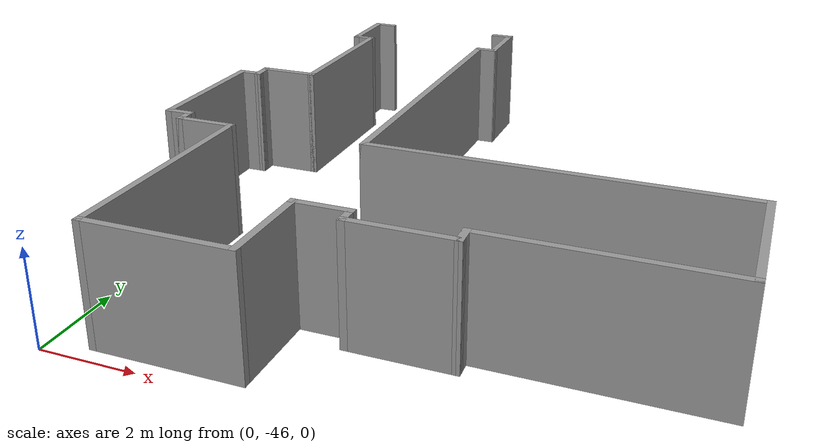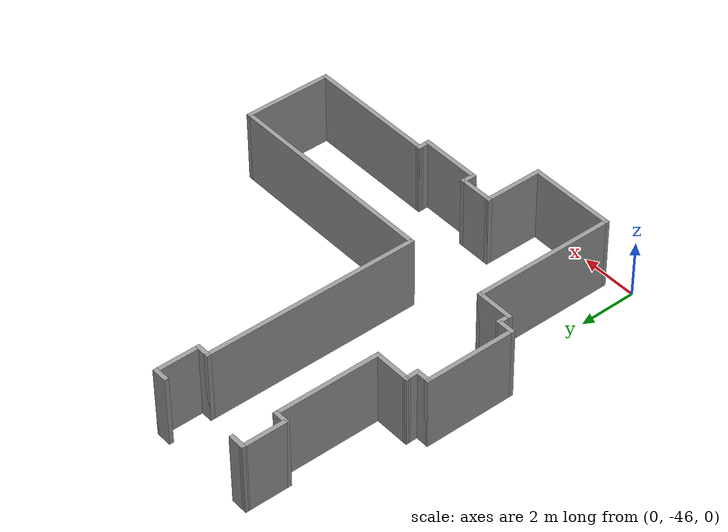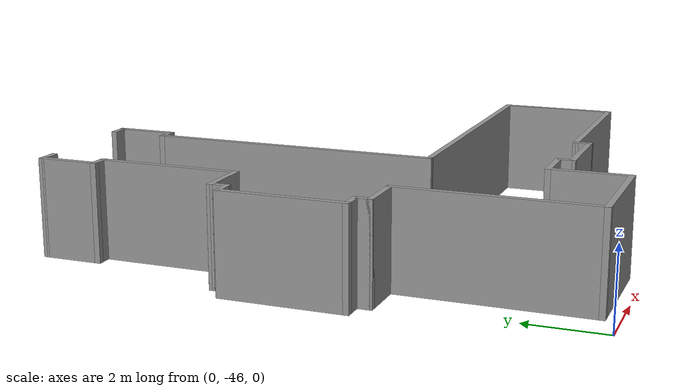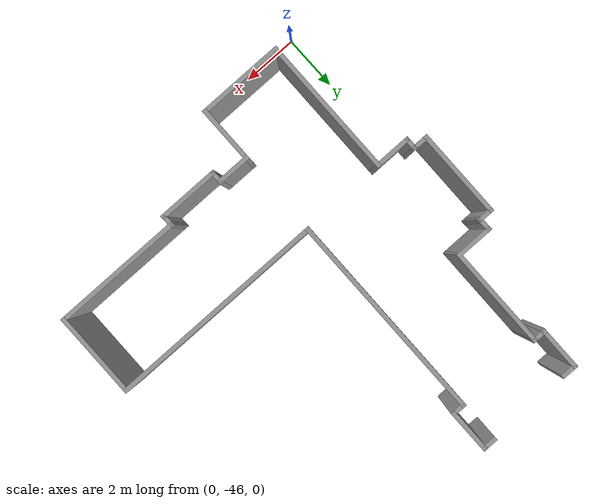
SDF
<sdf version="1.6">
 <model name="volen.world">
  <link name="Wall_180">
   <pose>4.07723 -31.9006 0 0 -0 0</pose>
   <visual name="Wall_180_Visual">
    <pose>0 0 1.25 0 -0 0</pose>
    <geometry><box><size>0.55 0.15 2.5</size></box></geometry>
    <material>
     <script><uri>file://media/materials/scripts/gazebo.material</uri><name>Gazebo/Grey</name></script>
     <ambient>1 1 1 1</ambient>
     <diffuse>0.7 0.7 0.7 1</diffuse>
     <specular>0.01 0.01 0.01 1</specular>
     <emissive>0 0 0 1</emissive>
    </material>
   </visual>
   <collision name="Wall_180_Collision">
    <pose>0 0 1.25 0 -0 0</pose>
    <geometry><box><size>0.55 0.15 2.5</size></box></geometry>
    <surface>
     <friction>
      <ode><mu>1</mu><mu2>1</mu2><fdir1>0 0 0</fdir1><slip1>0</slip1><slip2>0</slip2></ode>
      <torsional>
       <coefficient>1</coefficient>
       <patch_radius>0</patch_radius>
       <surface_radius>0</surface_radius>
       <use_patch_radius>1</use_patch_radius>
       <ode><slip>0</slip></ode>
      </torsional>
     </friction>
     <bounce><restitution_coefficient>0</restitution_coefficient><threshold>1e+06</threshold></bounce>
     <contact>
      <collide_without_contact>0</collide_without_contact>
      <collide_without_contact_bitmask>1</collide_without_contact_bitmask>
      <collide_bitmask>1</collide_bitmask>
      <ode>
       <soft_cfm>0</soft_cfm>
       <soft_erp>0.2</soft_erp>
       <kp>1e+13</kp>
       <kd>1</kd>
       <max_vel>0.01</max_vel>
       <min_depth>0</min_depth>
      </ode>
      <bullet>
       <split_impulse>1</split_impulse>
       <split_impulse_penetration_threshold>-0.01</split_impulse_penetration_threshold>
       <soft_cfm>0</soft_cfm>
       <soft_erp>0.2</soft_erp>
       <kp>1e+13</kp>
       <kd>1</kd>
      </bullet>
     </contact>
    </surface>
   </collision>
  </link>
  <link name="Wall_182">
   <pose>4.27723 -32.6256 0 0 0 -1.5708</pose>
   <visual name="Wall_182_Visual">
    <pose>0 0 1.25 0 -0 0</pose>
    <geometry><box><size>1.6 0.15 2.5</size></box></geometry>
    <material>
     <script><uri>file://media/materials/scripts/gazebo.material</uri><name>Gazebo/Grey</name></script>
     <ambient>1 1 1 1</ambient>
     <diffuse>0.7 0.7 0.7 1</diffuse>
     <specular>0.01 0.01 0.01 1</specular>
     <emissive>0 0 0 1</emissive>
    </material>
   </visual>
   <collision name="Wall_182_Collision">
    <pose>0 0 1.25 0 -0 0</pose>
    <geometry><box><size>1.6 0.15 2.5</size></box></geometry>
    <surface>
     <friction>
      <ode><mu>1</mu><mu2>1</mu2><fdir1>0 0 0</fdir1><slip1>0</slip1><slip2>0</slip2></ode>
      <torsional>
       <coefficient>1</coefficient>
       <patch_radius>0</patch_radius>
       <surface_radius>0</surface_radius>
       <use_patch_radius>1</use_patch_radius>
       <ode><slip>0</slip></ode>
      </torsional>
     </friction>
     <bounce><restitution_coefficient>0</restitution_coefficient><threshold>1e+06</threshold></bounce>
     <contact>
      <collide_without_contact>0</collide_without_contact>
      <collide_without_contact_bitmask>1</collide_without_contact_bitmask>
      <collide_bitmask>1</collide_bitmask>
      <ode>
       <soft_cfm>0</soft_cfm>
       <soft_erp>0.2</soft_erp>
       <kp>1e+13</kp>
       <kd>1</kd>
       <max_vel>0.01</max_vel>
       <min_depth>0</min_depth>
      </ode>
      <bullet>
       <split_impulse>1</split_impulse>
       <split_impulse_penetration_threshold>-0.01</split_impulse_penetration_threshold>
       <soft_cfm>0</soft_cfm>
       <soft_erp>0.2</soft_erp>
       <kp>1e+13</kp>
       <kd>1</kd>
      </bullet>
     </contact>
    </surface>
   </collision>
  </link>
  <link name="Wall_184">
   <pose>4.07723 -33.3506 0 0 -0 3.14159</pose>
   <visual name="Wall_184_Visual">
    <pose>0 0 1.25 0 -0 0</pose>
    <geometry><box><size>0.55 0.15 2.5</size></box></geometry>
    <material>
     <script><uri>file://media/materials/scripts/gazebo.material</uri><name>Gazebo/Grey</name></script>
     <ambient>1 1 1 1</ambient>
     <diffuse>0.7 0.7 0.7 1</diffuse>
     <specular>0.01 0.01 0.01 1</specular>
     <emissive>0 0 0 1</emissive>
    </material>
   </visual>
   <collision name="Wall_184_Collision">
    <pose>0 0 1.25 0 -0 0</pose>
    <geometry><box><size>0.55 0.15 2.5</size></box></geometry>
    <surface>
     <friction>
      <ode><mu>1</mu><mu2>1</mu2><fdir1>0 0 0</fdir1><slip1>0</slip1><slip2>0</slip2></ode>
      <torsional>
       <coefficient>1</coefficient>
       <patch_radius>0</patch_radius>
       <surface_radius>0</surface_radius>
       <use_patch_radius>1</use_patch_radius>
       <ode><slip>0</slip></ode>
      </torsional>
     </friction>
     <bounce><restitution_coefficient>0</restitution_coefficient><threshold>1e+06</threshold></bounce>
     <contact>
      <collide_without_contact>0</collide_without_contact>
      <collide_without_contact_bitmask>1</collide_without_contact_bitmask>
      <collide_bitmask>1</collide_bitmask>
      <ode>
       <soft_cfm>0</soft_cfm>
       <soft_erp>0.2</soft_erp>
       <kp>1e+13</kp>
       <kd>1</kd>
       <max_vel>0.01</max_vel>
       <min_depth>0</min_depth>
      </ode>
      <bullet>
       <split_impulse>1</split_impulse>
       <split_impulse_penetration_threshold>-0.01</split_impulse_penetration_threshold>
       <soft_cfm>0</soft_cfm>
       <soft_erp>0.2</soft_erp>
       <kp>1e+13</kp>
       <kd>1</kd>
      </bullet>
     </contact>
    </surface>
   </collision>
  </link>
  <link name="Wall_187">
   <pose>3.87723 -37.0256 0 0 0 -1.5708</pose>
   <visual name="Wall_187_Visual">
    <pose>0 0 1.25 0 -0 0</pose>
    <geometry><box><size>7.5 0.15 2.5</size></box></geometry>
    <material>
     <script><uri>file://media/materials/scripts/gazebo.material</uri><name>Gazebo/Grey</name></script>
     <ambient>1 1 1 1</ambient>
     <diffuse>0.7 0.7 0.7 1</diffuse>
     <specular>0.01 0.01 0.01 1</specular>
     <emissive>0 0 0 1</emissive>
    </material>
   </visual>
   <collision name="Wall_187_Collision">
    <pose>0 0 1.25 0 -0 0</pose>
    <geometry><box><size>7.5 0.15 2.5</size></box></geometry>
    <surface>
     <friction>
      <ode><mu>1</mu><mu2>1</mu2><fdir1>0 0 0</fdir1><slip1>0</slip1><slip2>0</slip2></ode>
      <torsional>
       <coefficient>1</coefficient>
       <patch_radius>0</patch_radius>
       <surface_radius>0</surface_radius>
       <use_patch_radius>1</use_patch_radius>
       <ode><slip>0</slip></ode>
      </torsional>
     </friction>
     <bounce><restitution_coefficient>0</restitution_coefficient><threshold>1e+06</threshold></bounce>
     <contact>
      <collide_without_contact>0</collide_without_contact>
      <collide_without_contact_bitmask>1</collide_without_contact_bitmask>
      <collide_bitmask>1</collide_bitmask>
      <ode>
       <soft_cfm>0</soft_cfm>
       <soft_erp>0.2</soft_erp>
       <kp>1e+13</kp>
       <kd>1</kd>
       <max_vel>0.01</max_vel>
       <min_depth>0</min_depth>
      </ode>
      <bullet>
       <split_impulse>1</split_impulse>
       <split_impulse_penetration_threshold>-0.01</split_impulse_penetration_threshold>
       <soft_cfm>0</soft_cfm>
       <soft_erp>0.2</soft_erp>
       <kp>1e+13</kp>
       <kd>1</kd>
      </bullet>
     </contact>
    </surface>
   </collision>
  </link>
  <link name="Wall_188">
   <pose>7.67723 -40.7006 0 0 -0 0</pose>
   <visual name="Wall_188_Visual">
    <pose>0 0 1.25 0 -0 0</pose>
    <geometry><box><size>7.75 0.15 2.5</size></box></geometry>
    <material>
     <script><uri>file://media/materials/scripts/gazebo.material</uri><name>Gazebo/Grey</name></script>
     <ambient>1 1 1 1</ambient>
     <diffuse>0.7 0.7 0.7 1</diffuse>
     <specular>0.01 0.01 0.01 1</specular>
     <emissive>0 0 0 1</emissive>
    </material>
   </visual>
   <collision name="Wall_188_Collision">
    <pose>0 0 1.25 0 -0 0</pose>
    <geometry><box><size>7.75 0.15 2.5</size></box></geometry>
    <surface>
     <friction>
      <ode><mu>1</mu><mu2>1</mu2><fdir1>0 0 0</fdir1><slip1>0</slip1><slip2>0</slip2></ode>
      <torsional>
       <coefficient>1</coefficient>
       <patch_radius>0</patch_radius>
       <surface_radius>0</surface_radius>
       <use_patch_radius>1</use_patch_radius>
       <ode><slip>0</slip></ode>
      </torsional>
     </friction>
     <bounce><restitution_coefficient>0</restitution_coefficient><threshold>1e+06</threshold></bounce>
     <contact>
      <collide_without_contact>0</collide_without_contact>
      <collide_without_contact_bitmask>1</collide_without_contact_bitmask>
      <collide_bitmask>1</collide_bitmask>
      <ode>
       <soft_cfm>0</soft_cfm>
       <soft_erp>0.2</soft_erp>
       <kp>1e+13</kp>
       <kd>1</kd>
       <max_vel>0.01</max_vel>
       <min_depth>0</min_depth>
      </ode>
      <bullet>
       <split_impulse>1</split_impulse>
       <split_impulse_penetration_threshold>-0.01</split_impulse_penetration_threshold>
       <soft_cfm>0</soft_cfm>
       <soft_erp>0.2</soft_erp>
       <kp>1e+13</kp>
       <kd>1</kd>
      </bullet>
     </contact>
    </surface>
   </collision>
  </link>
  <link name="Wall_190">
   <pose>11.4772 -42.1756 0 0 0 -1.5708</pose>
   <visual name="Wall_190_Visual">
    <pose>0 0 1.25 0 -0 0</pose>
    <geometry><box><size>3.1 0.15 2.5</size></box></geometry>
    <material>
     <script><uri>file://media/materials/scripts/gazebo.material</uri><name>Gazebo/Grey</name></script>
     <ambient>1 1 1 1</ambient>
     <diffuse>0.7 0.7 0.7 1</diffuse>
     <specular>0.01 0.01 0.01 1</specular>
     <emissive>0 0 0 1</emissive>
    </material>
   </visual>
   <collision name="Wall_190_Collision">
    <pose>0 0 1.25 0 -0 0</pose>
    <geometry><box><size>3.1 0.15 2.5</size></box></geometry>
    <surface>
     <friction>
      <ode><mu>1</mu><mu2>1</mu2><fdir1>0 0 0</fdir1><slip1>0</slip1><slip2>0</slip2></ode>
      <torsional>
       <coefficient>1</coefficient>
       <patch_radius>0</patch_radius>
       <surface_radius>0</surface_radius>
       <use_patch_radius>1</use_patch_radius>
       <ode><slip>0</slip></ode>
      </torsional>
     </friction>
     <bounce><restitution_coefficient>0</restitution_coefficient><threshold>1e+06</threshold></bounce>
     <contact>
      <collide_without_contact>0</collide_without_contact>
      <collide_without_contact_bitmask>1</collide_without_contact_bitmask>
      <collide_bitmask>1</collide_bitmask>
      <ode>
       <soft_cfm>0</soft_cfm>
       <soft_erp>0.2</soft_erp>
       <kp>1e+13</kp>
       <kd>1</kd>
       <max_vel>0.01</max_vel>
       <min_depth>0</min_depth>
      </ode>
      <bullet>
       <split_impulse>1</split_impulse>
       <split_impulse_penetration_threshold>-0.01</split_impulse_penetration_threshold>
       <soft_cfm>0</soft_cfm>
       <soft_erp>0.2</soft_erp>
       <kp>1e+13</kp>
       <kd>1</kd>
      </bullet>
     </contact>
    </surface>
   </collision>
  </link>
  <link name="Wall_192">
   <pose>9.22723 -43.6506 0 0 -0 3.14159</pose>
   <visual name="Wall_192_Visual">
    <pose>0 0 1.25 0 -0 0</pose>
    <geometry><box><size>4.65 0.15 2.5</size></box></geometry>
    <material>
     <script><uri>file://media/materials/scripts/gazebo.material</uri><name>Gazebo/Grey</name></script>
     <ambient>1 1 1 1</ambient>
     <diffuse>0.7 0.7 0.7 1</diffuse>
     <specular>0.01 0.01 0.01 1</specular>
     <emissive>0 0 0 1</emissive>
    </material>
   </visual>
   <collision name="Wall_192_Collision">
    <pose>0 0 1.25 0 -0 0</pose>
    <geometry><box><size>4.65 0.15 2.5</size></box></geometry>
    <surface>
     <friction>
      <ode><mu>1</mu><mu2>1</mu2><fdir1>0 0 0</fdir1><slip1>0</slip1><slip2>0</slip2></ode>
      <torsional>
       <coefficient>1</coefficient>
       <patch_radius>0</patch_radius>
       <surface_radius>0</surface_radius>
       <use_patch_radius>1</use_patch_radius>
       <ode><slip>0</slip></ode>
      </torsional>
     </friction>
     <bounce><restitution_coefficient>0</restitution_coefficient><threshold>1e+06</threshold></bounce>
     <contact>
      <collide_without_contact>0</collide_without_contact>
      <collide_without_contact_bitmask>1</collide_without_contact_bitmask>
      <collide_bitmask>1</collide_bitmask>
      <ode>
       <soft_cfm>0</soft_cfm>
       <soft_erp>0.2</soft_erp>
       <kp>1e+13</kp>
       <kd>1</kd>
       <max_vel>0.01</max_vel>
       <min_depth>0</min_depth>
      </ode>
      <bullet>
       <split_impulse>1</split_impulse>
       <split_impulse_penetration_threshold>-0.01</split_impulse_penetration_threshold>
       <soft_cfm>0</soft_cfm>
       <soft_erp>0.2</soft_erp>
       <kp>1e+13</kp>
       <kd>1</kd>
      </bullet>
     </contact>
    </surface>
   </collision>
  </link>
  <link name="Wall_194">
   <pose>6.98173 -43.8256 0 0 0 -1.54509</pose>
   <visual name="Wall_194_Visual">
    <pose>0 0 1.25 0 -0 0</pose>
    <geometry><box><size>0.5 0.15 2.5</size></box></geometry>
    <material>
     <script><uri>file://media/materials/scripts/gazebo.material</uri><name>Gazebo/Grey</name></script>
     <ambient>1 1 1 1</ambient>
     <diffuse>0.7 0.7 0.7 1</diffuse>
     <specular>0.01 0.01 0.01 1</specular>
     <emissive>0 0 0 1</emissive>
    </material>
   </visual>
   <collision name="Wall_194_Collision">
    <pose>0 0 1.25 0 -0 0</pose>
    <geometry><box><size>0.5 0.15 2.5</size></box></geometry>
    <surface>
     <friction>
      <ode><mu>1</mu><mu2>1</mu2><fdir1>0 0 0</fdir1><slip1>0</slip1><slip2>0</slip2></ode>
      <torsional>
       <coefficient>1</coefficient>
       <patch_radius>0</patch_radius>
       <surface_radius>0</surface_radius>
       <use_patch_radius>1</use_patch_radius>
       <ode><slip>0</slip></ode>
      </torsional>
     </friction>
     <bounce><restitution_coefficient>0</restitution_coefficient><threshold>1e+06</threshold></bounce>
     <contact>
      <collide_without_contact>0</collide_without_contact>
      <collide_without_contact_bitmask>1</collide_without_contact_bitmask>
      <collide_bitmask>1</collide_bitmask>
      <ode>
       <soft_cfm>0</soft_cfm>
       <soft_erp>0.2</soft_erp>
       <kp>1e+13</kp>
       <kd>1</kd>
       <max_vel>0.01</max_vel>
       <min_depth>0</min_depth>
      </ode>
      <bullet>
       <split_impulse>1</split_impulse>
       <split_impulse_penetration_threshold>-0.01</split_impulse_penetration_threshold>
       <soft_cfm>0</soft_cfm>
       <soft_erp>0.2</soft_erp>
       <kp>1e+13</kp>
       <kd>1</kd>
      </bullet>
     </contact>
    </surface>
   </collision>
  </link>
  <link name="Wall_195">
   <pose>5.96123 -44.0006 0 0 -0 3.14159</pose>
   <visual name="Wall_195_Visual">
    <pose>0 0 1.25 0 -0 0</pose>
    <geometry><box><size>2.2 0.15 2.5</size></box></geometry>
    <material>
     <script><uri>file://media/materials/scripts/gazebo.material</uri><name>Gazebo/Grey</name></script>
     <ambient>1 1 1 1</ambient>
     <diffuse>0.7 0.7 0.7 1</diffuse>
     <specular>0.01 0.01 0.01 1</specular>
     <emissive>0 0 0 1</emissive>
    </material>
   </visual>
   <collision name="Wall_195_Collision">
    <pose>0 0 1.25 0 -0 0</pose>
    <geometry><box><size>2.2 0.15 2.5</size></box></geometry>
    <surface>
     <friction>
      <ode><mu>1</mu><mu2>1</mu2><fdir1>0 0 0</fdir1><slip1>0</slip1><slip2>0</slip2></ode>
      <torsional>
       <coefficient>1</coefficient>
       <patch_radius>0</patch_radius>
       <surface_radius>0</surface_radius>
       <use_patch_radius>1</use_patch_radius>
       <ode><slip>0</slip></ode>
      </torsional>
     </friction>
     <bounce><restitution_coefficient>0</restitution_coefficient><threshold>1e+06</threshold></bounce>
     <contact>
      <collide_without_contact>0</collide_without_contact>
      <collide_without_contact_bitmask>1</collide_without_contact_bitmask>
      <collide_bitmask>1</collide_bitmask>
      <ode>
       <soft_cfm>0</soft_cfm>
       <soft_erp>0.2</soft_erp>
       <kp>1e+13</kp>
       <kd>1</kd>
       <max_vel>0.01</max_vel>
       <min_depth>0</min_depth>
      </ode>
      <bullet>
       <split_impulse>1</split_impulse>
       <split_impulse_penetration_threshold>-0.01</split_impulse_penetration_threshold>
       <soft_cfm>0</soft_cfm>
       <soft_erp>0.2</soft_erp>
       <kp>1e+13</kp>
       <kd>1</kd>
      </bullet>
     </contact>
    </surface>
   </collision>
  </link>
  <link name="Wall_197">
   <pose>4.93623 -43.8256 0 0 -0 1.5708</pose>
   <visual name="Wall_197_Visual">
    <pose>0 0 1.25 0 -0 0</pose>
    <geometry><box><size>0.5 0.15 2.5</size></box></geometry>
    <material>
     <script><uri>file://media/materials/scripts/gazebo.material</uri><name>Gazebo/Grey</name></script>
     <ambient>1 1 1 1</ambient>
     <diffuse>0.7 0.7 0.7 1</diffuse>
     <specular>0.01 0.01 0.01 1</specular>
     <emissive>0 0 0 1</emissive>
    </material>
   </visual>
   <collision name="Wall_197_Collision">
    <pose>0 0 1.25 0 -0 0</pose>
    <geometry><box><size>0.5 0.15 2.5</size></box></geometry>
    <surface>
     <friction>
      <ode><mu>1</mu><mu2>1</mu2><fdir1>0 0 0</fdir1><slip1>0</slip1><slip2>0</slip2></ode>
      <torsional>
       <coefficient>1</coefficient>
       <patch_radius>0</patch_radius>
       <surface_radius>0</surface_radius>
       <use_patch_radius>1</use_patch_radius>
       <ode><slip>0</slip></ode>
      </torsional>
     </friction>
     <bounce><restitution_coefficient>0</restitution_coefficient><threshold>1e+06</threshold></bounce>
     <contact>
      <collide_without_contact>0</collide_without_contact>
      <collide_without_contact_bitmask>1</collide_without_contact_bitmask>
      <collide_bitmask>1</collide_bitmask>
      <ode>
       <soft_cfm>0</soft_cfm>
       <soft_erp>0.2</soft_erp>
       <kp>1e+13</kp>
       <kd>1</kd>
       <max_vel>0.01</max_vel>
       <min_depth>0</min_depth>
      </ode>
      <bullet>
       <split_impulse>1</split_impulse>
       <split_impulse_penetration_threshold>-0.01</split_impulse_penetration_threshold>
       <soft_cfm>0</soft_cfm>
       <soft_erp>0.2</soft_erp>
       <kp>1e+13</kp>
       <kd>1</kd>
      </bullet>
     </contact>
    </surface>
   </collision>
  </link>
  <link name="Wall_198">
   <pose>4.38623 -43.6506 0 0 -0 3.14159</pose>
   <visual name="Wall_198_Visual">
    <pose>0 0 1.25 0 -0 0</pose>
    <geometry><box><size>1.25 0.15 2.5</size></box></geometry>
    <material>
     <script><uri>file://media/materials/scripts/gazebo.material</uri><name>Gazebo/Grey</name></script>
     <ambient>1 1 1 1</ambient>
     <diffuse>0.7 0.7 0.7 1</diffuse>
     <specular>0.01 0.01 0.01 1</specular>
     <emissive>0 0 0 1</emissive>
    </material>
   </visual>
   <collision name="Wall_198_Collision">
    <pose>0 0 1.25 0 -0 0</pose>
    <geometry><box><size>1.25 0.15 2.5</size></box></geometry>
    <surface>
     <friction>
      <ode><mu>1</mu><mu2>1</mu2><fdir1>0 0 0</fdir1><slip1>0</slip1><slip2>0</slip2></ode>
      <torsional>
       <coefficient>1</coefficient>
       <patch_radius>0</patch_radius>
       <surface_radius>0</surface_radius>
       <use_patch_radius>1</use_patch_radius>
       <ode><slip>0</slip></ode>
      </torsional>
     </friction>
     <bounce><restitution_coefficient>0</restitution_coefficient><threshold>1e+06</threshold></bounce>
     <contact>
      <collide_without_contact>0</collide_without_contact>
      <collide_without_contact_bitmask>1</collide_without_contact_bitmask>
      <collide_bitmask>1</collide_bitmask>
      <ode>
       <soft_cfm>0</soft_cfm>
       <soft_erp>0.2</soft_erp>
       <kp>1e+13</kp>
       <kd>1</kd>
       <max_vel>0.01</max_vel>
       <min_depth>0</min_depth>
      </ode>
      <bullet>
       <split_impulse>1</split_impulse>
       <split_impulse_penetration_threshold>-0.01</split_impulse_penetration_threshold>
       <soft_cfm>0</soft_cfm>
       <soft_erp>0.2</soft_erp>
       <kp>1e+13</kp>
       <kd>1</kd>
      </bullet>
     </contact>
    </surface>
   </collision>
  </link>
  <link name="Wall_199">
   <pose>3.83623 -44.6256 0 0 0 -1.5708</pose>
   <visual name="Wall_199_Visual">
    <pose>0 0 1.25 0 -0 0</pose>
    <geometry><box><size>2.1 0.15 2.5</size></box></geometry>
    <material>
     <script><uri>file://media/materials/scripts/gazebo.material</uri><name>Gazebo/Grey</name></script>
     <ambient>1 1 1 1</ambient>
     <diffuse>0.7 0.7 0.7 1</diffuse>
     <specular>0.01 0.01 0.01 1</specular>
     <emissive>0 0 0 1</emissive>
    </material>
   </visual>
   <collision name="Wall_199_Collision">
    <pose>0 0 1.25 0 -0 0</pose>
    <geometry><box><size>2.1 0.15 2.5</size></box></geometry>
    <surface>
     <friction>
      <ode><mu>1</mu><mu2>1</mu2><fdir1>0 0 0</fdir1><slip1>0</slip1><slip2>0</slip2></ode>
      <torsional>
       <coefficient>1</coefficient>
       <patch_radius>0</patch_radius>
       <surface_radius>0</surface_radius>
       <use_patch_radius>1</use_patch_radius>
       <ode><slip>0</slip></ode>
      </torsional>
     </friction>
     <bounce><restitution_coefficient>0</restitution_coefficient><threshold>1e+06</threshold></bounce>
     <contact>
      <collide_without_contact>0</collide_without_contact>
      <collide_without_contact_bitmask>1</collide_without_contact_bitmask>
      <collide_bitmask>1</collide_bitmask>
      <ode>
       <soft_cfm>0</soft_cfm>
       <soft_erp>0.2</soft_erp>
       <kp>1e+13</kp>
       <kd>1</kd>
       <max_vel>0.01</max_vel>
       <min_depth>0</min_depth>
      </ode>
      <bullet>
       <split_impulse>1</split_impulse>
       <split_impulse_penetration_threshold>-0.01</split_impulse_penetration_threshold>
       <soft_cfm>0</soft_cfm>
       <soft_erp>0.2</soft_erp>
       <kp>1e+13</kp>
       <kd>1</kd>
      </bullet>
     </contact>
    </surface>
   </collision>
  </link>
  <link name="Wall_202">
   <pose>2.36123 -45.6006 0 0 -0 3.14159</pose>
   <visual name="Wall_202_Visual">
    <pose>0 0 1.25 0 -0 0</pose>
    <geometry><box><size>3.1 0.15 2.5</size></box></geometry>
    <material>
     <script><uri>file://media/materials/scripts/gazebo.material</uri><name>Gazebo/Grey</name></script>
     <ambient>1 1 1 1</ambient>
     <diffuse>0.7 0.7 0.7 1</diffuse>
     <specular>0.01 0.01 0.01 1</specular>
     <emissive>0 0 0 1</emissive>
    </material>
   </visual>
   <collision name="Wall_202_Collision">
    <pose>0 0 1.25 0 -0 0</pose>
    <geometry><box><size>3.1 0.15 2.5</size></box></geometry>
    <surface>
     <friction>
      <ode><mu>1</mu><mu2>1</mu2><fdir1>0 0 0</fdir1><slip1>0</slip1><slip2>0</slip2></ode>
      <torsional>
       <coefficient>1</coefficient>
       <patch_radius>0</patch_radius>
       <surface_radius>0</surface_radius>
       <use_patch_radius>1</use_patch_radius>
       <ode><slip>0</slip></ode>
      </torsional>
     </friction>
     <bounce><restitution_coefficient>0</restitution_coefficient><threshold>1e+06</threshold></bounce>
     <contact>
      <collide_without_contact>0</collide_without_contact>
      <collide_without_contact_bitmask>1</collide_without_contact_bitmask>
      <collide_bitmask>1</collide_bitmask>
      <ode>
       <soft_cfm>0</soft_cfm>
       <soft_erp>0.2</soft_erp>
       <kp>1e+13</kp>
       <kd>1</kd>
       <max_vel>0.01</max_vel>
       <min_depth>0</min_depth>
      </ode>
      <bullet>
       <split_impulse>1</split_impulse>
       <split_impulse_penetration_threshold>-0.01</split_impulse_penetration_threshold>
       <soft_cfm>0</soft_cfm>
       <soft_erp>0.2</soft_erp>
       <kp>1e+13</kp>
       <kd>1</kd>
      </bullet>
     </contact>
    </surface>
   </collision>
  </link>
  <link name="Wall_204">
   <pose>0.88623 -43.1756 0 0 -0 1.5708</pose>
   <visual name="Wall_204_Visual">
    <pose>0 0 1.25 0 -0 0</pose>
    <geometry><box><size>5 0.15 2.5</size></box></geometry>
    <material>
     <script><uri>file://media/materials/scripts/gazebo.material</uri><name>Gazebo/Grey</name></script>
     <ambient>1 1 1 1</ambient>
     <diffuse>0.7 0.7 0.7 1</diffuse>
     <specular>0.01 0.01 0.01 1</specular>
     <emissive>0 0 0 1</emissive>
    </material>
   </visual>
   <collision name="Wall_204_Collision">
    <pose>0 0 1.25 0 -0 0</pose>
    <geometry><box><size>5 0.15 2.5</size></box></geometry>
    <surface>
     <friction>
      <ode><mu>1</mu><mu2>1</mu2><fdir1>0 0 0</fdir1><slip1>0</slip1><slip2>0</slip2></ode>
      <torsional>
       <coefficient>1</coefficient>
       <patch_radius>0</patch_radius>
       <surface_radius>0</surface_radius>
       <use_patch_radius>1</use_patch_radius>
       <ode><slip>0</slip></ode>
      </torsional>
     </friction>
     <bounce><restitution_coefficient>0</restitution_coefficient><threshold>1e+06</threshold></bounce>
     <contact>
      <collide_without_contact>0</collide_without_contact>
      <collide_without_contact_bitmask>1</collide_without_contact_bitmask>
      <collide_bitmask>1</collide_bitmask>
      <ode>
       <soft_cfm>0</soft_cfm>
       <soft_erp>0.2</soft_erp>
       <kp>1e+13</kp>
       <kd>1</kd>
       <max_vel>0.01</max_vel>
       <min_depth>0</min_depth>
      </ode>
      <bullet>
       <split_impulse>1</split_impulse>
       <split_impulse_penetration_threshold>-0.01</split_impulse_penetration_threshold>
       <soft_cfm>0</soft_cfm>
       <soft_erp>0.2</soft_erp>
       <kp>1e+13</kp>
       <kd>1</kd>
      </bullet>
     </contact>
    </surface>
   </collision>
  </link>
  <link name="Wall_206">
   <pose>0.28623 -40.7506 0 0 -0 3.14159</pose>
   <visual name="Wall_206_Visual">
    <pose>0 0 1.25 0 -0 0</pose>
    <geometry><box><size>1.35 0.15 2.5</size></box></geometry>
    <material>
     <script><uri>file://media/materials/scripts/gazebo.material</uri><name>Gazebo/Grey</name></script>
     <ambient>1 1 1 1</ambient>
     <diffuse>0.7 0.7 0.7 1</diffuse>
     <specular>0.01 0.01 0.01 1</specular>
     <emissive>0 0 0 1</emissive>
    </material>
   </visual>
   <collision name="Wall_206_Collision">
    <pose>0 0 1.25 0 -0 0</pose>
    <geometry><box><size>1.35 0.15 2.5</size></box></geometry>
    <surface>
     <friction>
      <ode><mu>1</mu><mu2>1</mu2><fdir1>0 0 0</fdir1><slip1>0</slip1><slip2>0</slip2></ode>
      <torsional>
       <coefficient>1</coefficient>
       <patch_radius>0</patch_radius>
       <surface_radius>0</surface_radius>
       <use_patch_radius>1</use_patch_radius>
       <ode><slip>0</slip></ode>
      </torsional>
     </friction>
     <bounce><restitution_coefficient>0</restitution_coefficient><threshold>1e+06</threshold></bounce>
     <contact>
      <collide_without_contact>0</collide_without_contact>
      <collide_without_contact_bitmask>1</collide_without_contact_bitmask>
      <collide_bitmask>1</collide_bitmask>
      <ode>
       <soft_cfm>0</soft_cfm>
       <soft_erp>0.2</soft_erp>
       <kp>1e+13</kp>
       <kd>1</kd>
       <max_vel>0.01</max_vel>
       <min_depth>0</min_depth>
      </ode>
      <bullet>
       <split_impulse>1</split_impulse>
       <split_impulse_penetration_threshold>-0.01</split_impulse_penetration_threshold>
       <soft_cfm>0</soft_cfm>
       <soft_erp>0.2</soft_erp>
       <kp>1e+13</kp>
       <kd>1</kd>
      </bullet>
     </contact>
    </surface>
   </collision>
  </link>
  <link name="Wall_208">
   <pose>-0.31377 -40.5756 0 0 -0 1.5708</pose>
   <visual name="Wall_208_Visual">
    <pose>0 0 1.25 0 -0 0</pose>
    <geometry><box><size>0.5 0.15 2.5</size></box></geometry>
    <material>
     <script><uri>file://media/materials/scripts/gazebo.material</uri><name>Gazebo/Grey</name></script>
     <ambient>1 1 1 1</ambient>
     <diffuse>0.7 0.7 0.7 1</diffuse>
     <specular>0.01 0.01 0.01 1</specular>
     <emissive>0 0 0 1</emissive>
    </material>
   </visual>
   <collision name="Wall_208_Collision">
    <pose>0 0 1.25 0 -0 0</pose>
    <geometry><box><size>0.5 0.15 2.5</size></box></geometry>
    <surface>
     <friction>
      <ode><mu>1</mu><mu2>1</mu2><fdir1>0 0 0</fdir1><slip1>0</slip1><slip2>0</slip2></ode>
      <torsional>
       <coefficient>1</coefficient>
       <patch_radius>0</patch_radius>
       <surface_radius>0</surface_radius>
       <use_patch_radius>1</use_patch_radius>
       <ode><slip>0</slip></ode>
      </torsional>
     </friction>
     <bounce><restitution_coefficient>0</restitution_coefficient><threshold>1e+06</threshold></bounce>
     <contact>
      <collide_without_contact>0</collide_without_contact>
      <collide_without_contact_bitmask>1</collide_without_contact_bitmask>
      <collide_bitmask>1</collide_bitmask>
      <ode>
       <soft_cfm>0</soft_cfm>
       <soft_erp>0.2</soft_erp>
       <kp>1e+13</kp>
       <kd>1</kd>
       <max_vel>0.01</max_vel>
       <min_depth>0</min_depth>
      </ode>
      <bullet>
       <split_impulse>1</split_impulse>
       <split_impulse_penetration_threshold>-0.01</split_impulse_penetration_threshold>
       <soft_cfm>0</soft_cfm>
       <soft_erp>0.2</soft_erp>
       <kp>1e+13</kp>
       <kd>1</kd>
      </bullet>
     </contact>
    </surface>
   </collision>
  </link>
  <link name="Wall_209">
   <pose>-0.56377 -40.4006 0 0 -0 3.14159</pose>
   <visual name="Wall_209_Visual">
    <pose>0 0 1.25 0 -0 0</pose>
    <geometry><box><size>0.65 0.15 2.5</size></box></geometry>
    <material>
     <script><uri>file://media/materials/scripts/gazebo.material</uri><name>Gazebo/Grey</name></script>
     <ambient>1 1 1 1</ambient>
     <diffuse>0.7 0.7 0.7 1</diffuse>
     <specular>0.01 0.01 0.01 1</specular>
     <emissive>0 0 0 1</emissive>
    </material>
   </visual>
   <collision name="Wall_209_Collision">
    <pose>0 0 1.25 0 -0 0</pose>
    <geometry><box><size>0.65 0.15 2.5</size></box></geometry>
    <surface>
     <friction>
      <ode><mu>1</mu><mu2>1</mu2><fdir1>0 0 0</fdir1><slip1>0</slip1><slip2>0</slip2></ode>
      <torsional>
       <coefficient>1</coefficient>
       <patch_radius>0</patch_radius>
       <surface_radius>0</surface_radius>
       <use_patch_radius>1</use_patch_radius>
       <ode><slip>0</slip></ode>
      </torsional>
     </friction>
     <bounce><restitution_coefficient>0</restitution_coefficient><threshold>1e+06</threshold></bounce>
     <contact>
      <collide_without_contact>0</collide_without_contact>
      <collide_without_contact_bitmask>1</collide_without_contact_bitmask>
      <collide_bitmask>1</collide_bitmask>
      <ode>
       <soft_cfm>0</soft_cfm>
       <soft_erp>0.2</soft_erp>
       <kp>1e+13</kp>
       <kd>1</kd>
       <max_vel>0.01</max_vel>
       <min_depth>0</min_depth>
      </ode>
      <bullet>
       <split_impulse>1</split_impulse>
       <split_impulse_penetration_threshold>-0.01</split_impulse_penetration_threshold>
       <soft_cfm>0</soft_cfm>
       <soft_erp>0.2</soft_erp>
       <kp>1e+13</kp>
       <kd>1</kd>
      </bullet>
     </contact>
    </surface>
   </collision>
  </link>
  <link name="Wall_212">
   <pose>-0.81377 -38.8756 0 0 -0 1.5708</pose>
   <visual name="Wall_212_Visual">
    <pose>0 0 1.25 0 -0 0</pose>
    <geometry><box><size>3.2 0.15 2.5</size></box></geometry>
    <material>
     <script><uri>file://media/materials/scripts/gazebo.material</uri><name>Gazebo/Grey</name></script>
     <ambient>1 1 1 1</ambient>
     <diffuse>0.7 0.7 0.7 1</diffuse>
     <specular>0.01 0.01 0.01 1</specular>
     <emissive>0 0 0 1</emissive>
    </material>
   </visual>
   <collision name="Wall_212_Collision">
    <pose>0 0 1.25 0 -0 0</pose>
    <geometry><box><size>3.2 0.15 2.5</size></box></geometry>
    <surface>
     <friction>
      <ode><mu>1</mu><mu2>1</mu2><fdir1>0 0 0</fdir1><slip1>0</slip1><slip2>0</slip2></ode>
      <torsional>
       <coefficient>1</coefficient>
       <patch_radius>0</patch_radius>
       <surface_radius>0</surface_radius>
       <use_patch_radius>1</use_patch_radius>
       <ode><slip>0</slip></ode>
      </torsional>
     </friction>
     <bounce><restitution_coefficient>0</restitution_coefficient><threshold>1e+06</threshold></bounce>
     <contact>
      <collide_without_contact>0</collide_without_contact>
      <collide_without_contact_bitmask>1</collide_without_contact_bitmask>
      <collide_bitmask>1</collide_bitmask>
      <ode>
       <soft_cfm>0</soft_cfm>
       <soft_erp>0.2</soft_erp>
       <kp>1e+13</kp>
       <kd>1</kd>
       <max_vel>0.01</max_vel>
       <min_depth>0</min_depth>
      </ode>
      <bullet>
       <split_impulse>1</split_impulse>
       <split_impulse_penetration_threshold>-0.01</split_impulse_penetration_threshold>
       <soft_cfm>0</soft_cfm>
       <soft_erp>0.2</soft_erp>
       <kp>1e+13</kp>
       <kd>1</kd>
      </bullet>
     </contact>
    </surface>
   </collision>
  </link>
  <link name="Wall_214">
   <pose>-0.58877 -37.3506 0 0 -0 0</pose>
   <visual name="Wall_214_Visual">
    <pose>0 0 1.25 0 -0 0</pose>
    <geometry><box><size>0.6 0.15 2.5</size></box></geometry>
    <material>
     <script><uri>file://media/materials/scripts/gazebo.material</uri><name>Gazebo/Grey</name></script>
     <ambient>1 1 1 1</ambient>
     <diffuse>0.7 0.7 0.7 1</diffuse>
     <specular>0.01 0.01 0.01 1</specular>
     <emissive>0 0 0 1</emissive>
    </material>
   </visual>
   <collision name="Wall_214_Collision">
    <pose>0 0 1.25 0 -0 0</pose>
    <geometry><box><size>0.6 0.15 2.5</size></box></geometry>
    <surface>
     <friction>
      <ode><mu>1</mu><mu2>1</mu2><fdir1>0 0 0</fdir1><slip1>0</slip1><slip2>0</slip2></ode>
      <torsional>
       <coefficient>1</coefficient>
       <patch_radius>0</patch_radius>
       <surface_radius>0</surface_radius>
       <use_patch_radius>1</use_patch_radius>
       <ode><slip>0</slip></ode>
      </torsional>
     </friction>
     <bounce><restitution_coefficient>0</restitution_coefficient><threshold>1e+06</threshold></bounce>
     <contact>
      <collide_without_contact>0</collide_without_contact>
      <collide_without_contact_bitmask>1</collide_without_contact_bitmask>
      <collide_bitmask>1</collide_bitmask>
      <ode>
       <soft_cfm>0</soft_cfm>
       <soft_erp>0.2</soft_erp>
       <kp>1e+13</kp>
       <kd>1</kd>
       <max_vel>0.01</max_vel>
       <min_depth>0</min_depth>
      </ode>
      <bullet>
       <split_impulse>1</split_impulse>
       <split_impulse_penetration_threshold>-0.01</split_impulse_penetration_threshold>
       <soft_cfm>0</soft_cfm>
       <soft_erp>0.2</soft_erp>
       <kp>1e+13</kp>
       <kd>1</kd>
      </bullet>
     </contact>
    </surface>
   </collision>
  </link>
  <link name="Wall_216">
   <pose>-0.369455 -37.1506 0 0 -0 1.59922</pose>
   <visual name="Wall_216_Visual">
    <pose>0 0 1.25 0 -0 0</pose>
    <geometry><box><size>0.55 0.15 2.5</size></box></geometry>
    <material>
     <script><uri>file://media/materials/scripts/gazebo.material</uri><name>Gazebo/Grey</name></script>
     <ambient>1 1 1 1</ambient>
     <diffuse>0.7 0.7 0.7 1</diffuse>
     <specular>0.01 0.01 0.01 1</specular>
     <emissive>0 0 0 1</emissive>
    </material>
   </visual>
   <collision name="Wall_216_Collision">
    <pose>0 0 1.25 0 -0 0</pose>
    <geometry><box><size>0.55 0.15 2.5</size></box></geometry>
    <surface>
     <friction>
      <ode><mu>1</mu><mu2>1</mu2><fdir1>0 0 0</fdir1><slip1>0</slip1><slip2>0</slip2></ode>
      <torsional>
       <coefficient>1</coefficient>
       <patch_radius>0</patch_radius>
       <surface_radius>0</surface_radius>
       <use_patch_radius>1</use_patch_radius>
       <ode><slip>0</slip></ode>
      </torsional>
     </friction>
     <bounce><restitution_coefficient>0</restitution_coefficient><threshold>1e+06</threshold></bounce>
     <contact>
      <collide_without_contact>0</collide_without_contact>
      <collide_without_contact_bitmask>1</collide_without_contact_bitmask>
      <collide_bitmask>1</collide_bitmask>
      <ode>
       <soft_cfm>0</soft_cfm>
       <soft_erp>0.2</soft_erp>
       <kp>1e+13</kp>
       <kd>1</kd>
       <max_vel>0.01</max_vel>
       <min_depth>0</min_depth>
      </ode>
      <bullet>
       <split_impulse>1</split_impulse>
       <split_impulse_penetration_threshold>-0.01</split_impulse_penetration_threshold>
       <soft_cfm>0</soft_cfm>
       <soft_erp>0.2</soft_erp>
       <kp>1e+13</kp>
       <kd>1</kd>
      </bullet>
     </contact>
    </surface>
   </collision>
  </link>
  <link name="Wall_218">
   <pose>0.240045 -36.9506 0 0 -0 0</pose>
   <visual name="Wall_218_Visual">
    <pose>0 0 1.25 0 -0 0</pose>
    <geometry><box><size>1.38 0.15 2.5</size></box></geometry>
    <material>
     <script><uri>file://media/materials/scripts/gazebo.material</uri><name>Gazebo/Grey</name></script>
     <ambient>1 1 1 1</ambient>
     <diffuse>0.7 0.7 0.7 1</diffuse>
     <specular>0.01 0.01 0.01 1</specular>
     <emissive>0 0 0 1</emissive>
    </material>
   </visual>
   <collision name="Wall_218_Collision">
    <pose>0 0 1.25 0 -0 0</pose>
    <geometry><box><size>1.38 0.15 2.5</size></box></geometry>
    <surface>
     <friction>
      <ode><mu>1</mu><mu2>1</mu2><fdir1>0 0 0</fdir1><slip1>0</slip1><slip2>0</slip2></ode>
      <torsional>
       <coefficient>1</coefficient>
       <patch_radius>0</patch_radius>
       <surface_radius>0</surface_radius>
       <use_patch_radius>1</use_patch_radius>
       <ode><slip>0</slip></ode>
      </torsional>
     </friction>
     <bounce><restitution_coefficient>0</restitution_coefficient><threshold>1e+06</threshold></bounce>
     <contact>
      <collide_without_contact>0</collide_without_contact>
      <collide_without_contact_bitmask>1</collide_without_contact_bitmask>
      <collide_bitmask>1</collide_bitmask>
      <ode>
       <soft_cfm>0</soft_cfm>
       <soft_erp>0.2</soft_erp>
       <kp>1e+13</kp>
       <kd>1</kd>
       <max_vel>0.01</max_vel>
       <min_depth>0</min_depth>
      </ode>
      <bullet>
       <split_impulse>1</split_impulse>
       <split_impulse_penetration_threshold>-0.01</split_impulse_penetration_threshold>
       <soft_cfm>0</soft_cfm>
       <soft_erp>0.2</soft_erp>
       <kp>1e+13</kp>
       <kd>1</kd>
      </bullet>
     </contact>
    </surface>
   </collision>
  </link>
  <link name="Wall_220">
   <pose>0.85523 -35.1756 0 0 -0 1.5708</pose>
   <visual name="Wall_220_Visual">
    <pose>0 0 1.25 0 -0 0</pose>
    <geometry><box><size>3.7 0.15 2.5</size></box></geometry>
    <material>
     <script><uri>file://media/materials/scripts/gazebo.material</uri><name>Gazebo/Grey</name></script>
     <ambient>1 1 1 1</ambient>
     <diffuse>0.7 0.7 0.7 1</diffuse>
     <specular>0.01 0.01 0.01 1</specular>
     <emissive>0 0 0 1</emissive>
    </material>
   </visual>
   <collision name="Wall_220_Collision">
    <pose>0 0 1.25 0 -0 0</pose>
    <geometry><box><size>3.7 0.15 2.5</size></box></geometry>
    <surface>
     <friction>
      <ode><mu>1</mu><mu2>1</mu2><fdir1>0 0 0</fdir1><slip1>0</slip1><slip2>0</slip2></ode>
      <torsional>
       <coefficient>1</coefficient>
       <patch_radius>0</patch_radius>
       <surface_radius>0</surface_radius>
       <use_patch_radius>1</use_patch_radius>
       <ode><slip>0</slip></ode>
      </torsional>
     </friction>
     <bounce><restitution_coefficient>0</restitution_coefficient><threshold>1e+06</threshold></bounce>
     <contact>
      <collide_without_contact>0</collide_without_contact>
      <collide_without_contact_bitmask>1</collide_without_contact_bitmask>
      <collide_bitmask>1</collide_bitmask>
      <ode>
       <soft_cfm>0</soft_cfm>
       <soft_erp>0.2</soft_erp>
       <kp>1e+13</kp>
       <kd>1</kd>
       <max_vel>0.01</max_vel>
       <min_depth>0</min_depth>
      </ode>
      <bullet>
       <split_impulse>1</split_impulse>
       <split_impulse_penetration_threshold>-0.01</split_impulse_penetration_threshold>
       <soft_cfm>0</soft_cfm>
       <soft_erp>0.2</soft_erp>
       <kp>1e+13</kp>
       <kd>1</kd>
      </bullet>
     </contact>
    </surface>
   </collision>
  </link>
  <link name="Wall_222">
   <pose>0.65523 -33.4006 0 0 -0 3.14159</pose>
   <visual name="Wall_222_Visual">
    <pose>0 0 1.25 0 -0 0</pose>
    <geometry><box><size>0.55 0.15 2.5</size></box></geometry>
    <material>
     <script><uri>file://media/materials/scripts/gazebo.material</uri><name>Gazebo/Grey</name></script>
     <ambient>1 1 1 1</ambient>
     <diffuse>0.7 0.7 0.7 1</diffuse>
     <specular>0.01 0.01 0.01 1</specular>
     <emissive>0 0 0 1</emissive>
    </material>
   </visual>
   <collision name="Wall_222_Collision">
    <pose>0 0 1.25 0 -0 0</pose>
    <geometry><box><size>0.55 0.15 2.5</size></box></geometry>
    <surface>
     <friction>
      <ode><mu>1</mu><mu2>1</mu2><fdir1>0 0 0</fdir1><slip1>0</slip1><slip2>0</slip2></ode>
      <torsional>
       <coefficient>1</coefficient>
       <patch_radius>0</patch_radius>
       <surface_radius>0</surface_radius>
       <use_patch_radius>1</use_patch_radius>
       <ode><slip>0</slip></ode>
      </torsional>
     </friction>
     <bounce><restitution_coefficient>0</restitution_coefficient><threshold>1e+06</threshold></bounce>
     <contact>
      <collide_without_contact>0</collide_without_contact>
      <collide_without_contact_bitmask>1</collide_without_contact_bitmask>
      <collide_bitmask>1</collide_bitmask>
      <ode>
       <soft_cfm>0</soft_cfm>
       <soft_erp>0.2</soft_erp>
       <kp>1e+13</kp>
       <kd>1</kd>
       <max_vel>0.01</max_vel>
       <min_depth>0</min_depth>
      </ode>
      <bullet>
       <split_impulse>1</split_impulse>
       <split_impulse_penetration_threshold>-0.01</split_impulse_penetration_threshold>
       <soft_cfm>0</soft_cfm>
       <soft_erp>0.2</soft_erp>
       <kp>1e+13</kp>
       <kd>1</kd>
      </bullet>
     </contact>
    </surface>
   </collision>
  </link>
  <link name="Wall_224">
   <pose>0.45523 -32.6756 0 0 -0 1.5708</pose>
   <visual name="Wall_224_Visual">
    <pose>0 0 1.25 0 -0 0</pose>
    <geometry><box><size>1.6 0.15 2.5</size></box></geometry>
    <material>
     <script><uri>file://media/materials/scripts/gazebo.material</uri><name>Gazebo/Grey</name></script>
     <ambient>1 1 1 1</ambient>
     <diffuse>0.7 0.7 0.7 1</diffuse>
     <specular>0.01 0.01 0.01 1</specular>
     <emissive>0 0 0 1</emissive>
    </material>
   </visual>
   <collision name="Wall_224_Collision">
    <pose>0 0 1.25 0 -0 0</pose>
    <geometry><box><size>1.6 0.15 2.5</size></box></geometry>
    <surface>
     <friction>
      <ode><mu>1</mu><mu2>1</mu2><fdir1>0 0 0</fdir1><slip1>0</slip1><slip2>0</slip2></ode>
      <torsional>
       <coefficient>1</coefficient>
       <patch_radius>0</patch_radius>
       <surface_radius>0</surface_radius>
       <use_patch_radius>1</use_patch_radius>
       <ode><slip>0</slip></ode>
      </torsional>
     </friction>
     <bounce><restitution_coefficient>0</restitution_coefficient><threshold>1e+06</threshold></bounce>
     <contact>
      <collide_without_contact>0</collide_without_contact>
      <collide_without_contact_bitmask>1</collide_without_contact_bitmask>
      <collide_bitmask>1</collide_bitmask>
      <ode>
       <soft_cfm>0</soft_cfm>
       <soft_erp>0.2</soft_erp>
       <kp>1e+13</kp>
       <kd>1</kd>
       <max_vel>0.01</max_vel>
       <min_depth>0</min_depth>
      </ode>
      <bullet>
       <split_impulse>1</split_impulse>
       <split_impulse_penetration_threshold>-0.01</split_impulse_penetration_threshold>
       <soft_cfm>0</soft_cfm>
       <soft_erp>0.2</soft_erp>
       <kp>1e+13</kp>
       <kd>1</kd>
      </bullet>
     </contact>
    </surface>
   </collision>
  </link>
  <link name="Wall_226">
   <pose>0.67873 -31.9521 0 0 0 -0.006711</pose>
   <visual name="Wall_226_Visual">
    <pose>0 0 1.25 0 -0 0</pose>
    <geometry><box><size>0.596779 0.15 2.5</size></box></geometry>
    <material>
     <script><uri>file://media/materials/scripts/gazebo.material</uri><name>Gazebo/Grey</name></script>
     <ambient>1 1 1 1</ambient>
     <diffuse>0.7 0.7 0.7 1</diffuse>
     <specular>0.01 0.01 0.01 1</specular>
     <emissive>0 0 0 1</emissive>
    </material>
   </visual>
   <collision name="Wall_226_Collision">
    <pose>0 0 1.25 0 -0 0</pose>
    <geometry><box><size>0.596779 0.15 2.5</size></box></geometry>
    <surface>
     <friction>
      <ode><mu>1</mu><mu2>1</mu2><fdir1>0 0 0</fdir1><slip1>0</slip1><slip2>0</slip2></ode>
      <torsional>
       <coefficient>1</coefficient>
       <patch_radius>0</patch_radius>
       <surface_radius>0</surface_radius>
       <use_patch_radius>1</use_patch_radius>
       <ode><slip>0</slip></ode>
      </torsional>
     </friction>
     <bounce><restitution_coefficient>0</restitution_coefficient><threshold>1e+06</threshold></bounce>
     <contact>
      <collide_without_contact>0</collide_without_contact>
      <collide_without_contact_bitmask>1</collide_without_contact_bitmask>
      <collide_bitmask>1</collide_bitmask>
      <ode>
       <soft_cfm>0</soft_cfm>
       <soft_erp>0.2</soft_erp>
       <kp>1e+13</kp>
       <kd>1</kd>
       <max_vel>0.01</max_vel>
       <min_depth>0</min_depth>
      </ode>
      <bullet>
       <split_impulse>1</split_impulse>
       <split_impulse_penetration_threshold>-0.01</split_impulse_penetration_threshold>
       <soft_cfm>0</soft_cfm>
       <soft_erp>0.2</soft_erp>
       <kp>1e+13</kp>
       <kd>1</kd>
      </bullet>
     </contact>
    </surface>
   </collision>
  </link>
  <static>1</static>
 </model>
</sdf>
